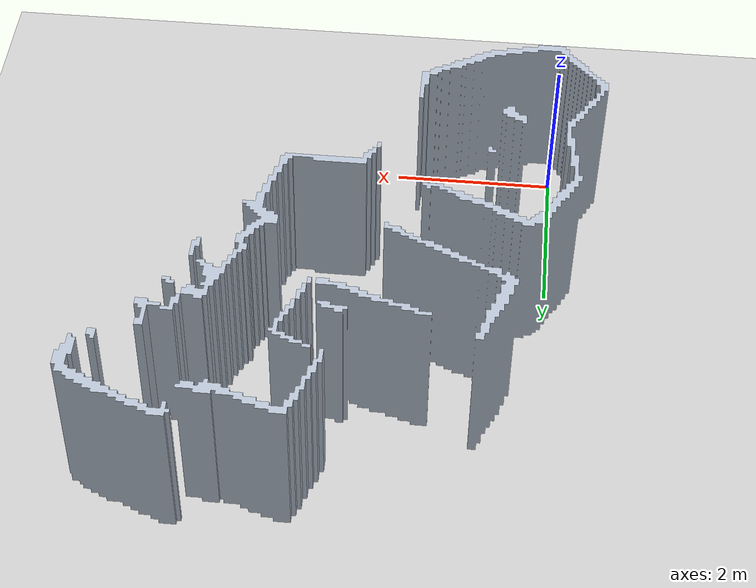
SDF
<?xml version="1.0"?>
<sdf version="1.6">
  <world name="factory_mapped_digital_twin">
    <plugin name="gazebo_ros_state" filename="libgazebo_ros_state.so">
      <ros><namespace>/gazebo</namespace></ros>
      <update_rate>10.0</update_rate>
    </plugin>
    <physics name="factory_physics" type="ode">
      <max_step_size>0.001</max_step_size>
      <real_time_update_rate>1000</real_time_update_rate>
    </physics>
    <scene>
      <ambient>0.45 0.45 0.45 1</ambient>
      <background>0.72 0.75 0.80 1</background>
      <shadows>true</shadows>
    </scene>
    <include><uri>model://sun</uri></include>
    <include><uri>model://ground_plane</uri></include>
    <include>
      <uri>model://factory_map_twin</uri>
      <name>factory_map_twin</name>
    </include>
    <gui fullscreen="0">
      <camera name="user_camera">
        <pose>2.4340 -3.5825
              8.4525 0 0.85 1.57</pose>
        <view_controller>orbit</view_controller>
      </camera>
    </gui>
  </world>
</sdf>

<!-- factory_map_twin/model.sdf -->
<sdf version="1.6">
  <model name="factory_map_twin">
    <static>true</static>
    <link name="walls">
      <collision name="collision">
        <geometry>
          <mesh><uri>model://factory_map_twin/meshes/walls.obj</uri></mesh>
        </geometry>
      </collision>
      <visual name="visual">
        <geometry>
          <mesh><uri>model://factory_map_twin/meshes/walls.obj</uri></mesh>
        </geometry>
        <material>
          <ambient>0.58 0.62 0.67 1</ambient>
          <diffuse>0.72 0.76 0.82 1</diffuse>
          <specular>0.08 0.08 0.08 1</specular>
        </material>
      </visual>
    </link>
  </model>
</sdf>
